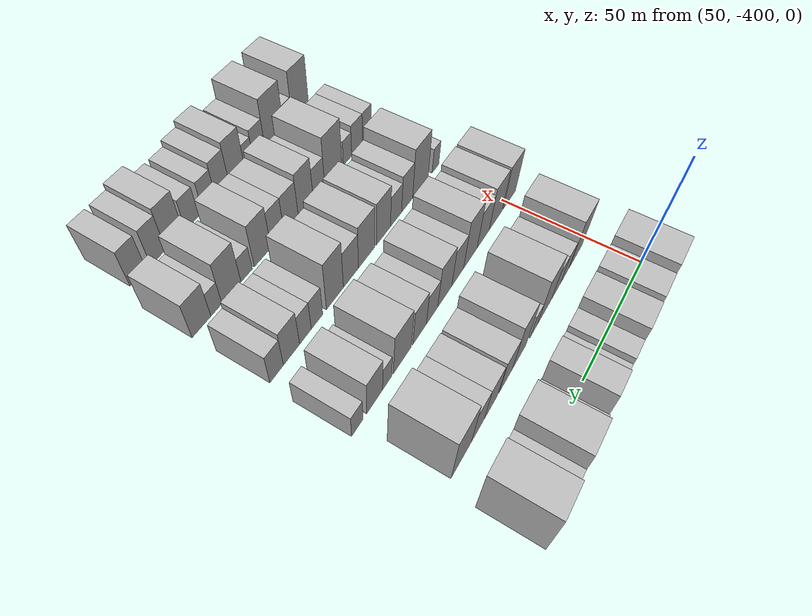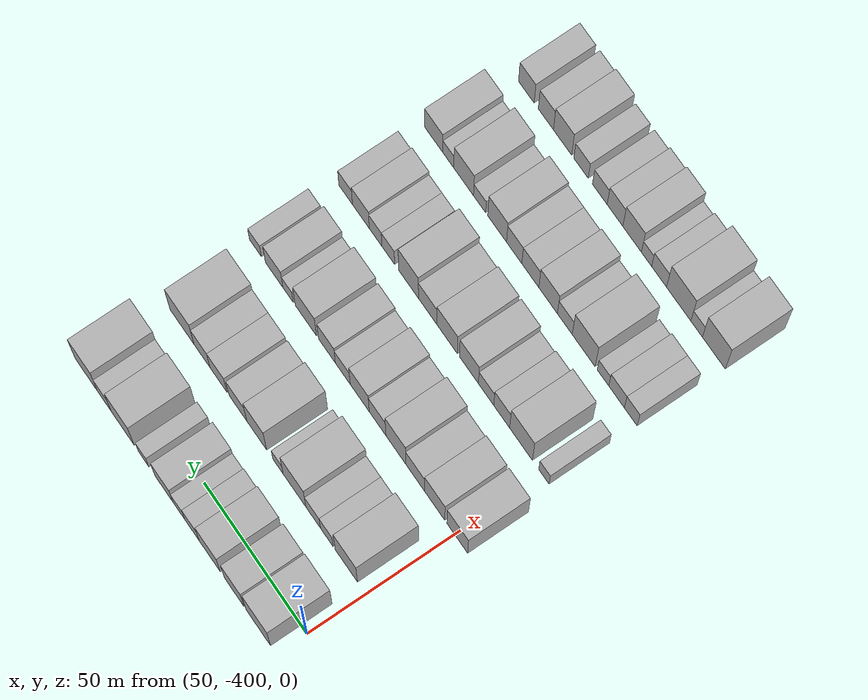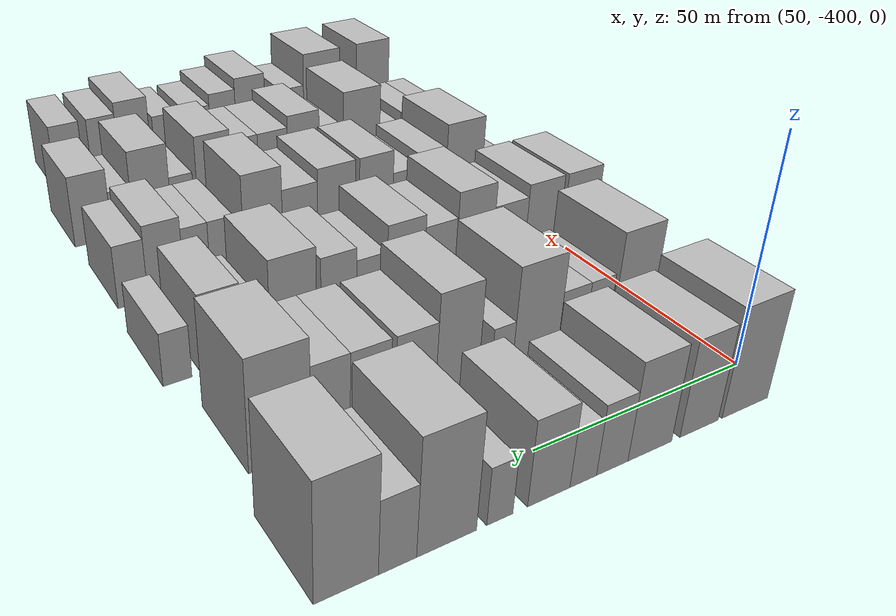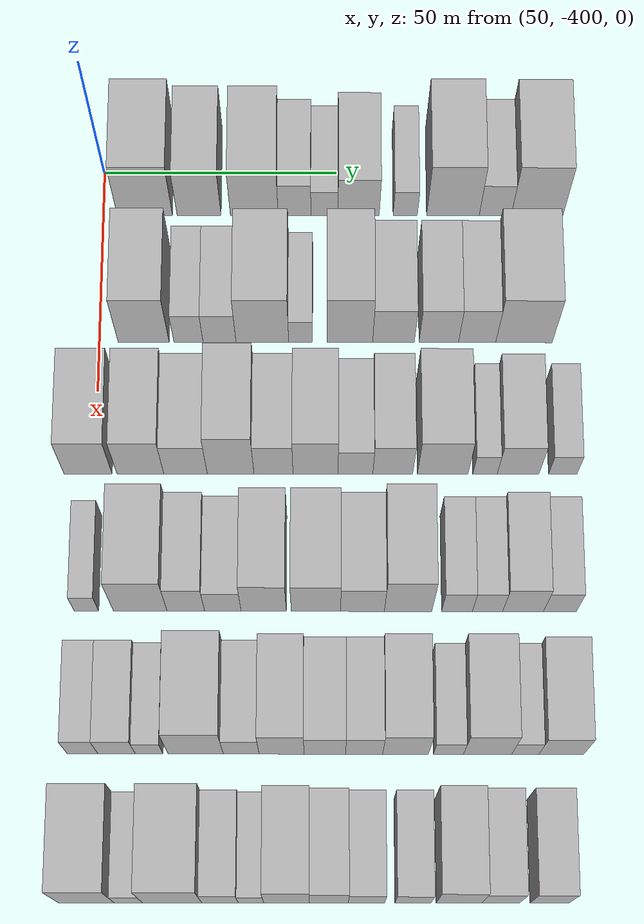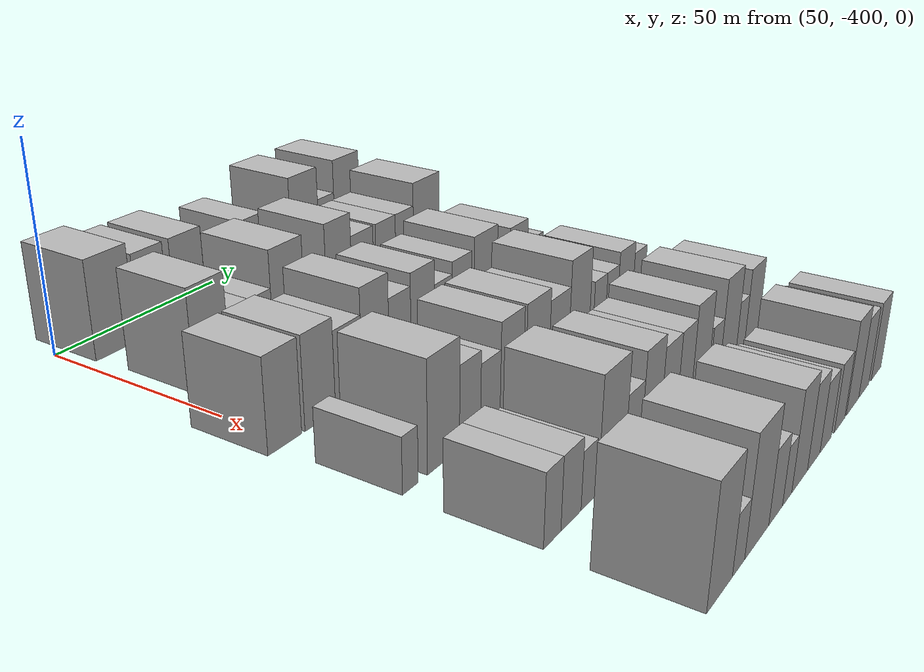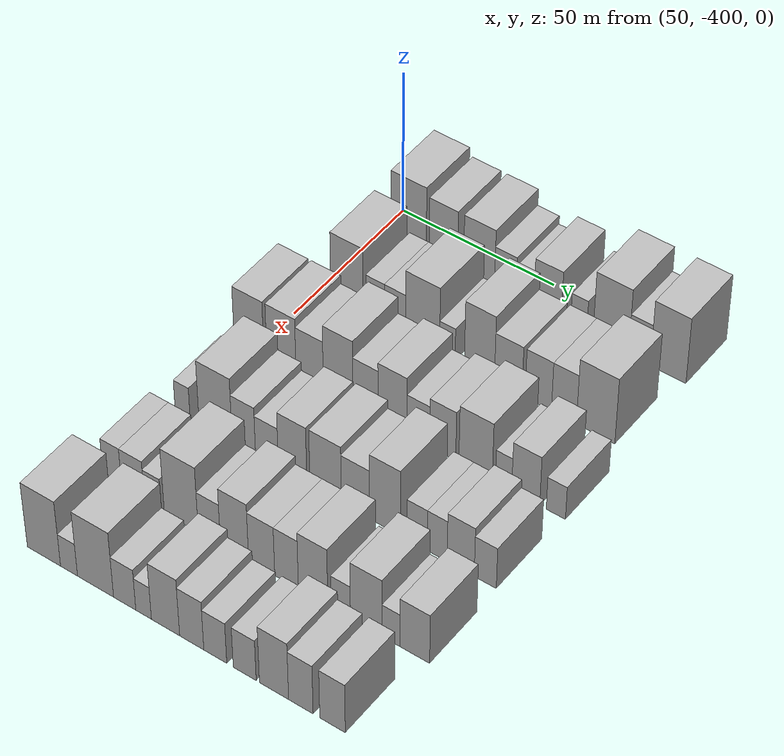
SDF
<sdf version="1.6">
 <world name="default">
  <model name="building_14">
   <static>1</static>
   <pose>50.0000 -391.1169 0 0.000000 0.000000 0.000000</pose>
   <link name="link">
    <pose>0 0 12.00 0 0 0</pose>
    <collision name="collision"><geometry><box><size>20.0000 11.8624 24.0000</size></box></geometry></collision>
    <visual name="visual">
     <cast_shadows>0</cast_shadows>
     <geometry><box><size>20.0000 11.8624 24.0000</size></box></geometry>
     <material>
      <script>
       <uri>model://HANNAS_wall/materials/scripts</uri>
       <uri>model://HANNAS_wall/materials/textures</uri>
       <name>vrc/HANNAS_wall</name>
      </script>
     </material>
    </visual>
   </link>
  </model>
  <model name="building_15">
   <static>1</static>
   <pose>50.0000 -379.4605 0 0.000000 0.000000 0.000000</pose>
   <link name="link">
    <pose>0 0 10.50 0 0 0</pose>
    <collision name="collision"><geometry><box><size>20.0000 9.4505 21.0000</size></box></geometry></collision>
    <visual name="visual">
     <cast_shadows>0</cast_shadows>
     <geometry><box><size>20.0000 9.4505 21.0000</size></box></geometry>
     <material>
      <script>
       <uri>model://HANNAS_wall/materials/scripts</uri>
       <uri>model://HANNAS_wall/materials/textures</uri>
       <name>vrc/HANNAS_wall</name>
      </script>
     </material>
    </visual>
   </link>
  </model>
  <model name="building_16">
   <static>1</static>
   <pose>50.0000 -367.6167 0 0.000000 0.000000 0.000000</pose>
   <link name="link">
    <pose>0 0 10.50 0 0 0</pose>
    <collision name="collision"><geometry><box><size>20.0000 10.2370 21.0000</size></box></geometry></collision>
    <visual name="visual">
     <cast_shadows>0</cast_shadows>
     <geometry><box><size>20.0000 10.2370 21.0000</size></box></geometry>
     <material>
      <script>
       <uri>model://HANNAS_wall/materials/scripts</uri>
       <uri>model://HANNAS_wall/materials/textures</uri>
       <name>vrc/HANNAS_wall</name>
      </script>
     </material>
    </visual>
   </link>
  </model>
  <model name="building_17">
   <static>1</static>
   <pose>50.0000 -358.9702 0 0.000000 0.000000 0.000000</pose>
   <link name="link">
    <pose>0 0 7.50 0 0 0</pose>
    <collision name="collision"><geometry><box><size>20.0000 7.0561 15.0000</size></box></geometry></collision>
    <visual name="visual">
     <cast_shadows>0</cast_shadows>
     <geometry><box><size>20.0000 7.0561 15.0000</size></box></geometry>
     <material>
      <script>
       <uri>model://HANNAS_wall/materials/scripts</uri>
       <uri>model://HANNAS_wall/materials/textures</uri>
       <name>vrc/HANNAS_wall</name>
      </script>
     </material>
    </visual>
   </link>
  </model>
  <model name="building_18">
   <static>1</static>
   <pose>50.0000 -352.5513 0 0.000000 0.000000 0.000000</pose>
   <link name="link">
    <pose>0 0 6.00 0 0 0</pose>
    <collision name="collision"><geometry><box><size>20.0000 5.7816 12.0000</size></box></geometry></collision>
    <visual name="visual">
     <cast_shadows>0</cast_shadows>
     <geometry><box><size>20.0000 5.7816 12.0000</size></box></geometry>
     <material>
      <script>
       <uri>model://HANNAS_wall/materials/scripts</uri>
       <uri>model://HANNAS_wall/materials/textures</uri>
       <name>vrc/HANNAS_wall</name>
      </script>
     </material>
    </visual>
   </link>
  </model>
  <model name="building_19">
   <static>1</static>
   <pose>50.0000 -345.2167 0 0.000000 0.000000 0.000000</pose>
   <link name="link">
    <pose>0 0 9.00 0 0 0</pose>
    <collision name="collision"><geometry><box><size>20.0000 8.8877 18.0000</size></box></geometry></collision>
    <visual name="visual">
     <cast_shadows>0</cast_shadows>
     <geometry><box><size>20.0000 8.8877 18.0000</size></box></geometry>
     <material>
      <script>
       <uri>model://HANNAS_wall/materials/scripts</uri>
       <uri>model://HANNAS_wall/materials/textures</uri>
       <name>vrc/HANNAS_wall</name>
      </script>
     </material>
    </visual>
   </link>
  </model>
  <model name="building_20">
   <static>1</static>
   <pose>50.0000 -335.1742 0 0.000000 0.000000 0.000000</pose>
   <link name="link">
    <pose>0 0 6.00 0 0 0</pose>
    <collision name="collision"><geometry><box><size>20.0000 5.1972 12.0000</size></box></geometry></collision>
    <visual name="visual">
     <cast_shadows>0</cast_shadows>
     <geometry><box><size>20.0000 5.1972 12.0000</size></box></geometry>
     <material>
      <script>
       <uri>model://HANNAS_wall/materials/scripts</uri>
       <uri>model://HANNAS_wall/materials/textures</uri>
       <name>vrc/HANNAS_wall</name>
      </script>
     </material>
    </visual>
   </link>
  </model>
  <model name="building_21">
   <static>1</static>
   <pose>50.0000 -324.9259 0 0.000000 0.000000 0.000000</pose>
   <link name="link">
    <pose>0 0 12.00 0 0 0</pose>
    <collision name="collision"><geometry><box><size>20.0000 11.2994 24.0000</size></box></geometry></collision>
    <visual name="visual">
     <cast_shadows>0</cast_shadows>
     <geometry><box><size>20.0000 11.2994 24.0000</size></box></geometry>
     <material>
      <script>
       <uri>model://HANNAS_wall/materials/scripts</uri>
       <uri>model://HANNAS_wall/materials/textures</uri>
       <name>vrc/HANNAS_wall</name>
      </script>
     </material>
    </visual>
   </link>
  </model>
  <model name="building_22">
   <static>1</static>
   <pose>50.0000 -315.8454 0 0.000000 0.000000 0.000000</pose>
   <link name="link">
    <pose>0 0 7.50 0 0 0</pose>
    <collision name="collision"><geometry><box><size>20.0000 6.8616 15.0000</size></box></geometry></collision>
    <visual name="visual">
     <cast_shadows>0</cast_shadows>
     <geometry><box><size>20.0000 6.8616 15.0000</size></box></geometry>
     <material>
      <script>
       <uri>model://HANNAS_wall/materials/scripts</uri>
       <uri>model://HANNAS_wall/materials/textures</uri>
       <name>vrc/HANNAS_wall</name>
      </script>
     </material>
    </visual>
   </link>
  </model>
  <model name="building_23">
   <static>1</static>
   <pose>50.0000 -306.8492 0 0.000000 0.000000 0.000000</pose>
   <link name="link">
    <pose>0 0 12.00 0 0 0</pose>
    <collision name="collision"><geometry><box><size>20.0000 11.1307 24.0000</size></box></geometry></collision>
    <visual name="visual">
     <cast_shadows>0</cast_shadows>
     <geometry><box><size>20.0000 11.1307 24.0000</size></box></geometry>
     <material>
      <script>
       <uri>model://HANNAS_wall/materials/scripts</uri>
       <uri>model://HANNAS_wall/materials/textures</uri>
       <name>vrc/HANNAS_wall</name>
      </script>
     </material>
    </visual>
   </link>
  </model>
  <model name="building_129">
   <static>1</static>
   <pose>79.0000 -390.6165 0 0.000000 0.000000 0.000000</pose>
   <link name="link">
    <pose>0 0 12.00 0 0 0</pose>
    <collision name="collision"><geometry><box><size>20.0000 10.7417 24.0000</size></box></geometry></collision>
    <visual name="visual">
     <cast_shadows>0</cast_shadows>
     <geometry><box><size>20.0000 10.7417 24.0000</size></box></geometry>
     <material>
      <script>
       <uri>model://HANNAS_wall/materials/scripts</uri>
       <uri>model://HANNAS_wall/materials/textures</uri>
       <name>vrc/HANNAS_wall</name>
      </script>
     </material>
    </visual>
   </link>
  </model>
  <model name="building_130">
   <static>1</static>
   <pose>79.0000 -381.1751 0 0.000000 0.000000 0.000000</pose>
   <link name="link">
    <pose>0 0 7.50 0 0 0</pose>
    <collision name="collision"><geometry><box><size>20.0000 6.1411 15.0000</size></box></geometry></collision>
    <visual name="visual">
     <cast_shadows>0</cast_shadows>
     <geometry><box><size>20.0000 6.1411 15.0000</size></box></geometry>
     <material>
      <script>
       <uri>model://HANNAS_wall/materials/scripts</uri>
       <uri>model://HANNAS_wall/materials/textures</uri>
       <name>vrc/HANNAS_wall</name>
      </script>
     </material>
    </visual>
   </link>
  </model>
  <model name="building_131">
   <static>1</static>
   <pose>79.0000 -374.6351 0 0.000000 0.000000 0.000000</pose>
   <link name="link">
    <pose>0 0 7.50 0 0 0</pose>
    <collision name="collision"><geometry><box><size>20.0000 6.9390 15.0000</size></box></geometry></collision>
    <visual name="visual">
     <cast_shadows>0</cast_shadows>
     <geometry><box><size>20.0000 6.9390 15.0000</size></box></geometry>
     <material>
      <script>
       <uri>model://HANNAS_wall/materials/scripts</uri>
       <uri>model://HANNAS_wall/materials/textures</uri>
       <name>vrc/HANNAS_wall</name>
      </script>
     </material>
    </visual>
   </link>
  </model>
  <model name="building_132">
   <static>1</static>
   <pose>79.0000 -365.6140 0 0.000000 0.000000 0.000000</pose>
   <link name="link">
    <pose>0 0 12.00 0 0 0</pose>
    <collision name="collision"><geometry><box><size>20.0000 11.1031 24.0000</size></box></geometry></collision>
    <visual name="visual">
     <cast_shadows>0</cast_shadows>
     <geometry><box><size>20.0000 11.1031 24.0000</size></box></geometry>
     <material>
      <script>
       <uri>model://HANNAS_wall/materials/scripts</uri>
       <uri>model://HANNAS_wall/materials/textures</uri>
       <name>vrc/HANNAS_wall</name>
      </script>
     </material>
    </visual>
   </link>
  </model>
  <model name="building_133">
   <static>1</static>
   <pose>79.0000 -357.5461 0 0.000000 0.000000 0.000000</pose>
   <link name="link">
    <pose>0 0 6.00 0 0 0</pose>
    <collision name="collision"><geometry><box><size>20.0000 5.0327 12.0000</size></box></geometry></collision>
    <visual name="visual">
     <cast_shadows>0</cast_shadows>
     <geometry><box><size>20.0000 5.0327 12.0000</size></box></geometry>
     <material>
      <script>
       <uri>model://HANNAS_wall/materials/scripts</uri>
       <uri>model://HANNAS_wall/materials/textures</uri>
       <name>vrc/HANNAS_wall</name>
      </script>
     </material>
    </visual>
   </link>
  </model>
  <model name="building_134">
   <static>1</static>
   <pose>79.0000 -347.1965 0 0.000000 0.000000 0.000000</pose>
   <link name="link">
    <pose>0 0 12.00 0 0 0</pose>
    <collision name="collision"><geometry><box><size>20.0000 9.6665 24.0000</size></box></geometry></collision>
    <visual name="visual">
     <cast_shadows>0</cast_shadows>
     <geometry><box><size>20.0000 9.6665 24.0000</size></box></geometry>
     <material>
      <script>
       <uri>model://HANNAS_wall/materials/scripts</uri>
       <uri>model://HANNAS_wall/materials/textures</uri>
       <name>vrc/HANNAS_wall</name>
      </script>
     </material>
    </visual>
   </link>
  </model>
  <model name="building_135">
   <static>1</static>
   <pose>79.0000 -337.9759 0 0.000000 0.000000 0.000000</pose>
   <link name="link">
    <pose>0 0 9.00 0 0 0</pose>
    <collision name="collision"><geometry><box><size>20.0000 8.7748 18.0000</size></box></geometry></collision>
    <visual name="visual">
     <cast_shadows>0</cast_shadows>
     <geometry><box><size>20.0000 8.7748 18.0000</size></box></geometry>
     <material>
      <script>
       <uri>model://HANNAS_wall/materials/scripts</uri>
       <uri>model://HANNAS_wall/materials/textures</uri>
       <name>vrc/HANNAS_wall</name>
      </script>
     </material>
    </visual>
   </link>
  </model>
  <model name="building_136">
   <static>1</static>
   <pose>79.0000 -328.4315 0 0.000000 0.000000 0.000000</pose>
   <link name="link">
    <pose>0 0 9.00 0 0 0</pose>
    <collision name="collision"><geometry><box><size>20.0000 8.3140 18.0000</size></box></geometry></collision>
    <visual name="visual">
     <cast_shadows>0</cast_shadows>
     <geometry><box><size>20.0000 8.3140 18.0000</size></box></geometry>
     <material>
      <script>
       <uri>model://HANNAS_wall/materials/scripts</uri>
       <uri>model://HANNAS_wall/materials/textures</uri>
       <name>vrc/HANNAS_wall</name>
      </script>
     </material>
    </visual>
   </link>
  </model>
  <model name="building_137">
   <static>1</static>
   <pose>79.0000 -320.3533 0 0.000000 0.000000 0.000000</pose>
   <link name="link">
    <pose>0 0 9.00 0 0 0</pose>
    <collision name="collision"><geometry><box><size>20.0000 7.8424 18.0000</size></box></geometry></collision>
    <visual name="visual">
     <cast_shadows>0</cast_shadows>
     <geometry><box><size>20.0000 7.8424 18.0000</size></box></geometry>
     <material>
      <script>
       <uri>model://HANNAS_wall/materials/scripts</uri>
       <uri>model://HANNAS_wall/materials/textures</uri>
       <name>vrc/HANNAS_wall</name>
      </script>
     </material>
    </visual>
   </link>
  </model>
  <model name="building_138">
   <static>1</static>
   <pose>79.0000 -310.4746 0 0.000000 0.000000 0.000000</pose>
   <link name="link">
    <pose>0 0 12.00 0 0 0</pose>
    <collision name="collision"><geometry><box><size>20.0000 11.9148 24.0000</size></box></geometry></collision>
    <visual name="visual">
     <cast_shadows>0</cast_shadows>
     <geometry><box><size>20.0000 11.9148 24.0000</size></box></geometry>
     <material>
      <script>
       <uri>model://HANNAS_wall/materials/scripts</uri>
       <uri>model://HANNAS_wall/materials/textures</uri>
       <name>vrc/HANNAS_wall</name>
      </script>
     </material>
    </visual>
   </link>
  </model>
  <model name="building_243">
   <static>1</static>
   <pose>108.0000 -401.3558 0 0.000000 0.000000 0.000000</pose>
   <link name="link">
    <pose>0 0 10.50 0 0 0</pose>
    <collision name="collision"><geometry><box><size>20.0000 9.9428 21.0000</size></box></geometry></collision>
    <visual name="visual">
     <cast_shadows>0</cast_shadows>
     <geometry><box><size>20.0000 9.9428 21.0000</size></box></geometry>
     <material>
      <script>
       <uri>model://HANNAS_wall/materials/scripts</uri>
       <uri>model://HANNAS_wall/materials/textures</uri>
       <name>vrc/HANNAS_wall</name>
      </script>
     </material>
    </visual>
   </link>
  </model>
  <model name="building_244">
   <static>1</static>
   <pose>108.0000 -390.5470 0 0.000000 0.000000 0.000000</pose>
   <link name="link">
    <pose>0 0 10.50 0 0 0</pose>
    <collision name="collision"><geometry><box><size>20.0000 9.6748 21.0000</size></box></geometry></collision>
    <visual name="visual">
     <cast_shadows>0</cast_shadows>
     <geometry><box><size>20.0000 9.6748 21.0000</size></box></geometry>
     <material>
      <script>
       <uri>model://HANNAS_wall/materials/scripts</uri>
       <uri>model://HANNAS_wall/materials/textures</uri>
       <name>vrc/HANNAS_wall</name>
      </script>
     </material>
    </visual>
   </link>
  </model>
  <model name="building_245">
   <static>1</static>
   <pose>108.0000 -381.2159 0 0.000000 0.000000 0.000000</pose>
   <link name="link">
    <pose>0 0 9.00 0 0 0</pose>
    <collision name="collision"><geometry><box><size>20.0000 8.9873 18.0000</size></box></geometry></collision>
    <visual name="visual">
     <cast_shadows>0</cast_shadows>
     <geometry><box><size>20.0000 8.9873 18.0000</size></box></geometry>
     <material>
      <script>
       <uri>model://HANNAS_wall/materials/scripts</uri>
       <uri>model://HANNAS_wall/materials/textures</uri>
       <name>vrc/HANNAS_wall</name>
      </script>
     </material>
    </visual>
   </link>
  </model>
  <model name="building_246">
   <static>1</static>
   <pose>108.0000 -371.8917 0 0.000000 0.000000 0.000000</pose>
   <link name="link">
    <pose>0 0 12.00 0 0 0</pose>
    <collision name="collision"><geometry><box><size>20.0000 9.6612 24.0000</size></box></geometry></collision>
    <visual name="visual">
     <cast_shadows>0</cast_shadows>
     <geometry><box><size>20.0000 9.6612 24.0000</size></box></geometry>
     <material>
      <script>
       <uri>model://HANNAS_wall/materials/scripts</uri>
       <uri>model://HANNAS_wall/materials/textures</uri>
       <name>vrc/HANNAS_wall</name>
      </script>
     </material>
    </visual>
   </link>
  </model>
  <model name="building_247">
   <static>1</static>
   <pose>108.0000 -363.0323 0 0.000000 0.000000 0.000000</pose>
   <link name="link">
    <pose>0 0 9.00 0 0 0</pose>
    <collision name="collision"><geometry><box><size>20.0000 8.0576 18.0000</size></box></geometry></collision>
    <visual name="visual">
     <cast_shadows>0</cast_shadows>
     <geometry><box><size>20.0000 8.0576 18.0000</size></box></geometry>
     <material>
      <script>
       <uri>model://HANNAS_wall/materials/scripts</uri>
       <uri>model://HANNAS_wall/materials/textures</uri>
       <name>vrc/HANNAS_wall</name>
      </script>
     </material>
    </visual>
   </link>
  </model>
  <model name="building_248">
   <static>1</static>
   <pose>108.0000 -354.3794 0 0.000000 0.000000 0.000000</pose>
   <link name="link">
    <pose>0 0 10.50 0 0 0</pose>
    <collision name="collision"><geometry><box><size>20.0000 9.2481 21.0000</size></box></geometry></collision>
    <visual name="visual">
     <cast_shadows>0</cast_shadows>
     <geometry><box><size>20.0000 9.2481 21.0000</size></box></geometry>
     <material>
      <script>
       <uri>model://HANNAS_wall/materials/scripts</uri>
       <uri>model://HANNAS_wall/materials/textures</uri>
       <name>vrc/HANNAS_wall</name>
      </script>
     </material>
    </visual>
   </link>
  </model>
  <model name="building_249">
   <static>1</static>
   <pose>108.0000 -346.1368 0 0.000000 0.000000 0.000000</pose>
   <link name="link">
    <pose>0 0 7.50 0 0 0</pose>
    <collision name="collision"><geometry><box><size>20.0000 7.2371 15.0000</size></box></geometry></collision>
    <visual name="visual">
     <cast_shadows>0</cast_shadows>
     <geometry><box><size>20.0000 7.2371 15.0000</size></box></geometry>
     <material>
      <script>
       <uri>model://HANNAS_wall/materials/scripts</uri>
       <uri>model://HANNAS_wall/materials/textures</uri>
       <name>vrc/HANNAS_wall</name>
      </script>
     </material>
    </visual>
   </link>
  </model>
  <model name="building_250">
   <static>1</static>
   <pose>108.0000 -338.4086 0 0.000000 0.000000 0.000000</pose>
   <link name="link">
    <pose>0 0 9.00 0 0 0</pose>
    <collision name="collision"><geometry><box><size>20.0000 8.2192 18.0000</size></box></geometry></collision>
    <visual name="visual">
     <cast_shadows>0</cast_shadows>
     <geometry><box><size>20.0000 8.2192 18.0000</size></box></geometry>
     <material>
      <script>
       <uri>model://HANNAS_wall/materials/scripts</uri>
       <uri>model://HANNAS_wall/materials/textures</uri>
       <name>vrc/HANNAS_wall</name>
      </script>
     </material>
    </visual>
   </link>
  </model>
  <model name="building_251">
   <static>1</static>
   <pose>108.0000 -328.0817 0 0.000000 0.000000 0.000000</pose>
   <link name="link">
    <pose>0 0 10.50 0 0 0</pose>
    <collision name="collision"><geometry><box><size>20.0000 10.4348 21.0000</size></box></geometry></collision>
    <visual name="visual">
     <cast_shadows>0</cast_shadows>
     <geometry><box><size>20.0000 10.4348 21.0000</size></box></geometry>
     <material>
      <script>
       <uri>model://HANNAS_wall/materials/scripts</uri>
       <uri>model://HANNAS_wall/materials/textures</uri>
       <name>vrc/HANNAS_wall</name>
      </script>
     </material>
    </visual>
   </link>
  </model>
  <model name="building_252">
   <static>1</static>
   <pose>108.0000 -319.3493 0 0.000000 0.000000 0.000000</pose>
   <link name="link">
    <pose>0 0 6.00 0 0 0</pose>
    <collision name="collision"><geometry><box><size>20.0000 5.0300 12.0000</size></box></geometry></collision>
    <visual name="visual">
     <cast_shadows>0</cast_shadows>
     <geometry><box><size>20.0000 5.0300 12.0000</size></box></geometry>
     <material>
      <script>
       <uri>model://HANNAS_wall/materials/scripts</uri>
       <uri>model://HANNAS_wall/materials/textures</uri>
       <name>vrc/HANNAS_wall</name>
      </script>
     </material>
    </visual>
   </link>
  </model>
  <model name="building_253">
   <static>1</static>
   <pose>108.0000 -312.5192 0 0.000000 0.000000 0.000000</pose>
   <link name="link">
    <pose>0 0 9.00 0 0 0</pose>
    <collision name="collision"><geometry><box><size>20.0000 8.6300 18.0000</size></box></geometry></collision>
    <visual name="visual">
     <cast_shadows>0</cast_shadows>
     <geometry><box><size>20.0000 8.6300 18.0000</size></box></geometry>
     <material>
      <script>
       <uri>model://HANNAS_wall/materials/scripts</uri>
       <uri>model://HANNAS_wall/materials/textures</uri>
       <name>vrc/HANNAS_wall</name>
      </script>
     </material>
    </visual>
   </link>
  </model>
  <model name="building_254">
   <static>1</static>
   <pose>108.0000 -303.2706 0 0.000000 0.000000 0.000000</pose>
   <link name="link">
    <pose>0 0 6.00 0 0 0</pose>
    <collision name="collision"><geometry><box><size>20.0000 5.8672 12.0000</size></box></geometry></collision>
    <visual name="visual">
     <cast_shadows>0</cast_shadows>
     <geometry><box><size>20.0000 5.8672 12.0000</size></box></geometry>
     <material>
      <script>
       <uri>model://HANNAS_wall/materials/scripts</uri>
       <uri>model://HANNAS_wall/materials/textures</uri>
       <name>vrc/HANNAS_wall</name>
      </script>
     </material>
    </visual>
   </link>
  </model>
  <model name="building_355">
   <static>1</static>
   <pose>137.0000 -400.7031 0 0.000000 0.000000 0.000000</pose>
   <link name="link">
    <pose>0 0 6.00 0 0 0</pose>
    <collision name="collision"><geometry><box><size>20.0000 4.9476 12.0000</size></box></geometry></collision>
    <visual name="visual">
     <cast_shadows>0</cast_shadows>
     <geometry><box><size>20.0000 4.9476 12.0000</size></box></geometry>
     <material>
      <script>
       <uri>model://HANNAS_wall/materials/scripts</uri>
       <uri>model://HANNAS_wall/materials/textures</uri>
       <name>vrc/HANNAS_wall</name>
      </script>
     </material>
    </visual>
   </link>
  </model>
  <model name="building_356">
   <static>1</static>
   <pose>137.0000 -389.7900 0 0.000000 0.000000 0.000000</pose>
   <link name="link">
    <pose>0 0 12.00 0 0 0</pose>
    <collision name="collision"><geometry><box><size>20.0000 10.8788 24.0000</size></box></geometry></collision>
    <visual name="visual">
     <cast_shadows>0</cast_shadows>
     <geometry><box><size>20.0000 10.8788 24.0000</size></box></geometry>
     <material>
      <script>
       <uri>model://HANNAS_wall/materials/scripts</uri>
       <uri>model://HANNAS_wall/materials/textures</uri>
       <name>vrc/HANNAS_wall</name>
      </script>
     </material>
    </visual>
   </link>
  </model>
  <model name="building_357">
   <static>1</static>
   <pose>137.0000 -380.5550 0 0.000000 0.000000 0.000000</pose>
   <link name="link">
    <pose>0 0 9.00 0 0 0</pose>
    <collision name="collision"><geometry><box><size>20.0000 7.5913 18.0000</size></box></geometry></collision>
    <visual name="visual">
     <cast_shadows>0</cast_shadows>
     <geometry><box><size>20.0000 7.5913 18.0000</size></box></geometry>
     <material>
      <script>
       <uri>model://HANNAS_wall/materials/scripts</uri>
       <uri>model://HANNAS_wall/materials/textures</uri>
       <name>vrc/HANNAS_wall</name>
      </script>
     </material>
    </visual>
   </link>
  </model>
  <model name="building_358">
   <static>1</static>
   <pose>137.0000 -373.0667 0 0.000000 0.000000 0.000000</pose>
   <link name="link">
    <pose>0 0 7.50 0 0 0</pose>
    <collision name="collision"><geometry><box><size>20.0000 7.3852 15.0000</size></box></geometry></collision>
    <visual name="visual">
     <cast_shadows>0</cast_shadows>
     <geometry><box><size>20.0000 7.3852 15.0000</size></box></geometry>
     <material>
      <script>
       <uri>model://HANNAS_wall/materials/scripts</uri>
       <uri>model://HANNAS_wall/materials/textures</uri>
       <name>vrc/HANNAS_wall</name>
      </script>
     </material>
    </visual>
   </link>
  </model>
  <model name="building_359">
   <static>1</static>
   <pose>137.0000 -364.8025 0 0.000000 0.000000 0.000000</pose>
   <link name="link">
    <pose>0 0 10.50 0 0 0</pose>
    <collision name="collision"><geometry><box><size>20.0000 9.1433 21.0000</size></box></geometry></collision>
    <visual name="visual">
     <cast_shadows>0</cast_shadows>
     <geometry><box><size>20.0000 9.1433 21.0000</size></box></geometry>
     <material>
      <script>
       <uri>model://HANNAS_wall/materials/scripts</uri>
       <uri>model://HANNAS_wall/materials/textures</uri>
       <name>vrc/HANNAS_wall</name>
      </script>
     </material>
    </visual>
   </link>
  </model>
  <model name="building_360">
   <static>1</static>
   <pose>137.0000 -354.2568 0 0.000000 0.000000 0.000000</pose>
   <link name="link">
    <pose>0 0 10.50 0 0 0</pose>
    <collision name="collision"><geometry><box><size>20.0000 9.9481 21.0000</size></box></geometry></collision>
    <visual name="visual">
     <cast_shadows>0</cast_shadows>
     <geometry><box><size>20.0000 9.9481 21.0000</size></box></geometry>
     <material>
      <script>
       <uri>model://HANNAS_wall/materials/scripts</uri>
       <uri>model://HANNAS_wall/materials/textures</uri>
       <name>vrc/HANNAS_wall</name>
      </script>
     </material>
    </visual>
   </link>
  </model>
  <model name="building_361">
   <static>1</static>
   <pose>137.0000 -344.8387 0 0.000000 0.000000 0.000000</pose>
   <link name="link">
    <pose>0 0 9.00 0 0 0</pose>
    <collision name="collision"><geometry><box><size>20.0000 8.8883 18.0000</size></box></geometry></collision>
    <visual name="visual">
     <cast_shadows>0</cast_shadows>
     <geometry><box><size>20.0000 8.8883 18.0000</size></box></geometry>
     <material>
      <script>
       <uri>model://HANNAS_wall/materials/scripts</uri>
       <uri>model://HANNAS_wall/materials/textures</uri>
       <name>vrc/HANNAS_wall</name>
      </script>
     </material>
    </visual>
   </link>
  </model>
  <model name="building_362">
   <static>1</static>
   <pose>137.0000 -335.5828 0 0.000000 0.000000 0.000000</pose>
   <link name="link">
    <pose>0 0 12.00 0 0 0</pose>
    <collision name="collision"><geometry><box><size>20.0000 9.6235 24.0000</size></box></geometry></collision>
    <visual name="visual">
     <cast_shadows>0</cast_shadows>
     <geometry><box><size>20.0000 9.6235 24.0000</size></box></geometry>
     <material>
      <script>
       <uri>model://HANNAS_wall/materials/scripts</uri>
       <uri>model://HANNAS_wall/materials/textures</uri>
       <name>vrc/HANNAS_wall</name>
      </script>
     </material>
    </visual>
   </link>
  </model>
  <model name="building_363">
   <static>1</static>
   <pose>137.0000 -325.6632 0 0.000000 0.000000 0.000000</pose>
   <link name="link">
    <pose>0 0 7.50 0 0 0</pose>
    <collision name="collision"><geometry><box><size>20.0000 6.2159 15.0000</size></box></geometry></collision>
    <visual name="visual">
     <cast_shadows>0</cast_shadows>
     <geometry><box><size>20.0000 6.2159 15.0000</size></box></geometry>
     <material>
      <script>
       <uri>model://HANNAS_wall/materials/scripts</uri>
       <uri>model://HANNAS_wall/materials/textures</uri>
       <name>vrc/HANNAS_wall</name>
      </script>
     </material>
    </visual>
   </link>
  </model>
  <model name="building_364">
   <static>1</static>
   <pose>137.0000 -319.4896 0 0.000000 0.000000 0.000000</pose>
   <link name="link">
    <pose>0 0 7.50 0 0 0</pose>
    <collision name="collision"><geometry><box><size>20.0000 6.1313 15.0000</size></box></geometry></collision>
    <visual name="visual">
     <cast_shadows>0</cast_shadows>
     <geometry><box><size>20.0000 6.1313 15.0000</size></box></geometry>
     <material>
      <script>
       <uri>model://HANNAS_wall/materials/scripts</uri>
       <uri>model://HANNAS_wall/materials/textures</uri>
       <name>vrc/HANNAS_wall</name>
      </script>
     </material>
    </visual>
   </link>
  </model>
  <model name="building_365">
   <static>1</static>
   <pose>137.0000 -312.2790 0 0.000000 0.000000 0.000000</pose>
   <link name="link">
    <pose>0 0 9.00 0 0 0</pose>
    <collision name="collision"><geometry><box><size>20.0000 8.2899 18.0000</size></box></geometry></collision>
    <visual name="visual">
     <cast_shadows>0</cast_shadows>
     <geometry><box><size>20.0000 8.2899 18.0000</size></box></geometry>
     <material>
      <script>
       <uri>model://HANNAS_wall/materials/scripts</uri>
       <uri>model://HANNAS_wall/materials/textures</uri>
       <name>vrc/HANNAS_wall</name>
      </script>
     </material>
    </visual>
   </link>
  </model>
  <model name="building_366">
   <static>1</static>
   <pose>137.0000 -304.7952 0 0.000000 0.000000 0.000000</pose>
   <link name="link">
    <pose>0 0 7.50 0 0 0</pose>
    <collision name="collision"><geometry><box><size>20.0000 6.6778 15.0000</size></box></geometry></collision>
    <visual name="visual">
     <cast_shadows>0</cast_shadows>
     <geometry><box><size>20.0000 6.6778 15.0000</size></box></geometry>
     <material>
      <script>
       <uri>model://HANNAS_wall/materials/scripts</uri>
       <uri>model://HANNAS_wall/materials/textures</uri>
       <name>vrc/HANNAS_wall</name>
      </script>
     </material>
    </visual>
   </link>
  </model>
  <model name="building_476">
   <static>1</static>
   <pose>166.0000 -400.4587 0 0.000000 0.000000 0.000000</pose>
   <link name="link">
    <pose>0 0 7.50 0 0 0</pose>
    <collision name="collision"><geometry><box><size>20.0000 6.0867 15.0000</size></box></geometry></collision>
    <visual name="visual">
     <cast_shadows>0</cast_shadows>
     <geometry><box><size>20.0000 6.0867 15.0000</size></box></geometry>
     <material>
      <script>
       <uri>model://HANNAS_wall/materials/scripts</uri>
       <uri>model://HANNAS_wall/materials/textures</uri>
       <name>vrc/HANNAS_wall</name>
      </script>
     </material>
    </visual>
   </link>
  </model>
  <model name="building_477">
   <static>1</static>
   <pose>166.0000 -393.7168 0 0.000000 0.000000 0.000000</pose>
   <link name="link">
    <pose>0 0 7.50 0 0 0</pose>
    <collision name="collision"><geometry><box><size>20.0000 7.3971 15.0000</size></box></geometry></collision>
    <visual name="visual">
     <cast_shadows>0</cast_shadows>
     <geometry><box><size>20.0000 7.3971 15.0000</size></box></geometry>
     <material>
      <script>
       <uri>model://HANNAS_wall/materials/scripts</uri>
       <uri>model://HANNAS_wall/materials/textures</uri>
       <name>vrc/HANNAS_wall</name>
      </script>
     </material>
    </visual>
   </link>
  </model>
  <model name="building_478">
   <static>1</static>
   <pose>166.0000 -387.2690 0 0.000000 0.000000 0.000000</pose>
   <link name="link">
    <pose>0 0 6.00 0 0 0</pose>
    <collision name="collision"><geometry><box><size>20.0000 5.4985 12.0000</size></box></geometry></collision>
    <visual name="visual">
     <cast_shadows>0</cast_shadows>
     <geometry><box><size>20.0000 5.4985 12.0000</size></box></geometry>
     <material>
      <script>
       <uri>model://HANNAS_wall/materials/scripts</uri>
       <uri>model://HANNAS_wall/materials/textures</uri>
       <name>vrc/HANNAS_wall</name>
      </script>
     </material>
    </visual>
   </link>
  </model>
  <model name="building_479">
   <static>1</static>
   <pose>166.0000 -378.0439 0 0.000000 0.000000 0.000000</pose>
   <link name="link">
    <pose>0 0 12.00 0 0 0</pose>
    <collision name="collision"><geometry><box><size>20.0000 10.9516 24.0000</size></box></geometry></collision>
    <visual name="visual">
     <cast_shadows>0</cast_shadows>
     <geometry><box><size>20.0000 10.9516 24.0000</size></box></geometry>
     <material>
      <script>
       <uri>model://HANNAS_wall/materials/scripts</uri>
       <uri>model://HANNAS_wall/materials/textures</uri>
       <name>vrc/HANNAS_wall</name>
      </script>
     </material>
    </visual>
   </link>
  </model>
  <model name="building_480">
   <static>1</static>
   <pose>166.0000 -369.0242 0 0.000000 0.000000 0.000000</pose>
   <link name="link">
    <pose>0 0 7.50 0 0 0</pose>
    <collision name="collision"><geometry><box><size>20.0000 7.0880 15.0000</size></box></geometry></collision>
    <visual name="visual">
     <cast_shadows>0</cast_shadows>
     <geometry><box><size>20.0000 7.0880 15.0000</size></box></geometry>
     <material>
      <script>
       <uri>model://HANNAS_wall/materials/scripts</uri>
       <uri>model://HANNAS_wall/materials/textures</uri>
       <name>vrc/HANNAS_wall</name>
      </script>
     </material>
    </visual>
   </link>
  </model>
  <model name="building_481">
   <static>1</static>
   <pose>166.0000 -361.0165 0 0.000000 0.000000 0.000000</pose>
   <link name="link">
    <pose>0 0 10.50 0 0 0</pose>
    <collision name="collision"><geometry><box><size>20.0000 8.9274 21.0000</size></box></geometry></collision>
    <visual name="visual">
     <cast_shadows>0</cast_shadows>
     <geometry><box><size>20.0000 8.9274 21.0000</size></box></geometry>
     <material>
      <script>
       <uri>model://HANNAS_wall/materials/scripts</uri>
       <uri>model://HANNAS_wall/materials/textures</uri>
       <name>vrc/HANNAS_wall</name>
      </script>
     </material>
    </visual>
   </link>
  </model>
  <model name="building_482">
   <static>1</static>
   <pose>166.0000 -352.4479 0 0.000000 0.000000 0.000000</pose>
   <link name="link">
    <pose>0 0 9.00 0 0 0</pose>
    <collision name="collision"><geometry><box><size>20.0000 8.2097 18.0000</size></box></geometry></collision>
    <visual name="visual">
     <cast_shadows>0</cast_shadows>
     <geometry><box><size>20.0000 8.2097 18.0000</size></box></geometry>
     <material>
      <script>
       <uri>model://HANNAS_wall/materials/scripts</uri>
       <uri>model://HANNAS_wall/materials/textures</uri>
       <name>vrc/HANNAS_wall</name>
      </script>
     </material>
    </visual>
   </link>
  </model>
  <model name="building_483">
   <static>1</static>
   <pose>166.0000 -344.6536 0 0.000000 0.000000 0.000000</pose>
   <link name="link">
    <pose>0 0 9.00 0 0 0</pose>
    <collision name="collision"><geometry><box><size>20.0000 7.3789 18.0000</size></box></geometry></collision>
    <visual name="visual">
     <cast_shadows>0</cast_shadows>
     <geometry><box><size>20.0000 7.3789 18.0000</size></box></geometry>
     <material>
      <script>
       <uri>model://HANNAS_wall/materials/scripts</uri>
       <uri>model://HANNAS_wall/materials/textures</uri>
       <name>vrc/HANNAS_wall</name>
      </script>
     </material>
    </visual>
   </link>
  </model>
  <model name="building_484">
   <static>1</static>
   <pose>166.0000 -336.4205 0 0.000000 0.000000 0.000000</pose>
   <link name="link">
    <pose>0 0 10.50 0 0 0</pose>
    <collision name="collision"><geometry><box><size>20.0000 9.0875 21.0000</size></box></geometry></collision>
    <visual name="visual">
     <cast_shadows>0</cast_shadows>
     <geometry><box><size>20.0000 9.0875 21.0000</size></box></geometry>
     <material>
      <script>
       <uri>model://HANNAS_wall/materials/scripts</uri>
       <uri>model://HANNAS_wall/materials/textures</uri>
       <name>vrc/HANNAS_wall</name>
      </script>
     </material>
    </visual>
   </link>
  </model>
  <model name="building_485">
   <static>1</static>
   <pose>166.0000 -327.9078 0 0.000000 0.000000 0.000000</pose>
   <link name="link">
    <pose>0 0 6.00 0 0 0</pose>
    <collision name="collision"><geometry><box><size>20.0000 5.9378 12.0000</size></box></geometry></collision>
    <visual name="visual">
     <cast_shadows>0</cast_shadows>
     <geometry><box><size>20.0000 5.9378 12.0000</size></box></geometry>
     <material>
      <script>
       <uri>model://HANNAS_wall/materials/scripts</uri>
       <uri>model://HANNAS_wall/materials/textures</uri>
       <name>vrc/HANNAS_wall</name>
      </script>
     </material>
    </visual>
   </link>
  </model>
  <model name="building_486">
   <static>1</static>
   <pose>166.0000 -320.1332 0 0.000000 0.000000 0.000000</pose>
   <link name="link">
    <pose>0 0 10.50 0 0 0</pose>
    <collision name="collision"><geometry><box><size>20.0000 9.6114 21.0000</size></box></geometry></collision>
    <visual name="visual">
     <cast_shadows>0</cast_shadows>
     <geometry><box><size>20.0000 9.6114 21.0000</size></box></geometry>
     <material>
      <script>
       <uri>model://HANNAS_wall/materials/scripts</uri>
       <uri>model://HANNAS_wall/materials/textures</uri>
       <name>vrc/HANNAS_wall</name>
      </script>
     </material>
    </visual>
   </link>
  </model>
  <model name="building_487">
   <static>1</static>
   <pose>166.0000 -312.6350 0 0.000000 0.000000 0.000000</pose>
   <link name="link">
    <pose>0 0 6.00 0 0 0</pose>
    <collision name="collision"><geometry><box><size>20.0000 5.3851 12.0000</size></box></geometry></collision>
    <visual name="visual">
     <cast_shadows>0</cast_shadows>
     <geometry><box><size>20.0000 5.3851 12.0000</size></box></geometry>
     <material>
      <script>
       <uri>model://HANNAS_wall/materials/scripts</uri>
       <uri>model://HANNAS_wall/materials/textures</uri>
       <name>vrc/HANNAS_wall</name>
      </script>
     </material>
    </visual>
   </link>
  </model>
  <model name="building_488">
   <static>1</static>
   <pose>166.0000 -305.4775 0 0.000000 0.000000 0.000000</pose>
   <link name="link">
    <pose>0 0 9.00 0 0 0</pose>
    <collision name="collision"><geometry><box><size>20.0000 8.9299 18.0000</size></box></geometry></collision>
    <visual name="visual">
     <cast_shadows>0</cast_shadows>
     <geometry><box><size>20.0000 8.9299 18.0000</size></box></geometry>
     <material>
      <script>
       <uri>model://HANNAS_wall/materials/scripts</uri>
       <uri>model://HANNAS_wall/materials/textures</uri>
       <name>vrc/HANNAS_wall</name>
      </script>
     </material>
    </visual>
   </link>
  </model>
  <model name="building_597">
   <static>1</static>
   <pose>195.0000 -398.7776 0 0.000000 0.000000 0.000000</pose>
   <link name="link">
    <pose>0 0 12.00 0 0 0</pose>
    <collision name="collision"><geometry><box><size>20.0000 10.8312 24.0000</size></box></geometry></collision>
    <visual name="visual">
     <cast_shadows>0</cast_shadows>
     <geometry><box><size>20.0000 10.8312 24.0000</size></box></geometry>
     <material>
      <script>
       <uri>model://HANNAS_wall/materials/scripts</uri>
       <uri>model://HANNAS_wall/materials/textures</uri>
       <name>vrc/HANNAS_wall</name>
      </script>
     </material>
    </visual>
   </link>
  </model>
  <model name="building_598">
   <static>1</static>
   <pose>195.0000 -390.6149 0 0.000000 0.000000 0.000000</pose>
   <link name="link">
    <pose>0 0 6.00 0 0 0</pose>
    <collision name="collision"><geometry><box><size>20.0000 5.4943 12.0000</size></box></geometry></collision>
    <visual name="visual">
     <cast_shadows>0</cast_shadows>
     <geometry><box><size>20.0000 5.4943 12.0000</size></box></geometry>
     <material>
      <script>
       <uri>model://HANNAS_wall/materials/scripts</uri>
       <uri>model://HANNAS_wall/materials/textures</uri>
       <name>vrc/HANNAS_wall</name>
      </script>
     </material>
    </visual>
   </link>
  </model>
  <model name="building_599">
   <static>1</static>
   <pose>195.0000 -382.0826 0 0.000000 0.000000 0.000000</pose>
   <link name="link">
    <pose>0 0 12.00 0 0 0</pose>
    <collision name="collision"><geometry><box><size>20.0000 11.5703 24.0000</size></box></geometry></collision>
    <visual name="visual">
     <cast_shadows>0</cast_shadows>
     <geometry><box><size>20.0000 11.5703 24.0000</size></box></geometry>
     <material>
      <script>
       <uri>model://HANNAS_wall/materials/scripts</uri>
       <uri>model://HANNAS_wall/materials/textures</uri>
       <name>vrc/HANNAS_wall</name>
      </script>
     </material>
    </visual>
   </link>
  </model>
  <model name="building_600">
   <static>1</static>
   <pose>195.0000 -372.7586 0 0.000000 0.000000 0.000000</pose>
   <link name="link">
    <pose>0 0 7.50 0 0 0</pose>
    <collision name="collision"><geometry><box><size>20.0000 7.0776 15.0000</size></box></geometry></collision>
    <visual name="visual">
     <cast_shadows>0</cast_shadows>
     <geometry><box><size>20.0000 7.0776 15.0000</size></box></geometry>
     <material>
      <script>
       <uri>model://HANNAS_wall/materials/scripts</uri>
       <uri>model://HANNAS_wall/materials/textures</uri>
       <name>vrc/HANNAS_wall</name>
      </script>
     </material>
    </visual>
   </link>
  </model>
  <model name="building_601">
   <static>1</static>
   <pose>195.0000 -366.7520 0 0.000000 0.000000 0.000000</pose>
   <link name="link">
    <pose>0 0 6.00 0 0 0</pose>
    <collision name="collision"><geometry><box><size>20.0000 4.9355 12.0000</size></box></geometry></collision>
    <visual name="visual">
     <cast_shadows>0</cast_shadows>
     <geometry><box><size>20.0000 4.9355 12.0000</size></box></geometry>
     <material>
      <script>
       <uri>model://HANNAS_wall/materials/scripts</uri>
       <uri>model://HANNAS_wall/materials/textures</uri>
       <name>vrc/HANNAS_wall</name>
      </script>
     </material>
    </visual>
   </link>
  </model>
  <model name="building_602">
   <static>1</static>
   <pose>195.0000 -359.8509 0 0.000000 0.000000 0.000000</pose>
   <link name="link">
    <pose>0 0 10.50 0 0 0</pose>
    <collision name="collision"><geometry><box><size>20.0000 8.8668 21.0000</size></box></geometry></collision>
    <visual name="visual">
     <cast_shadows>0</cast_shadows>
     <geometry><box><size>20.0000 8.8668 21.0000</size></box></geometry>
     <material>
      <script>
       <uri>model://HANNAS_wall/materials/scripts</uri>
       <uri>model://HANNAS_wall/materials/textures</uri>
       <name>vrc/HANNAS_wall</name>
      </script>
     </material>
    </visual>
   </link>
  </model>
  <model name="building_603">
   <static>1</static>
   <pose>195.0000 -351.6534 0 0.000000 0.000000 0.000000</pose>
   <link name="link">
    <pose>0 0 9.00 0 0 0</pose>
    <collision name="collision"><geometry><box><size>20.0000 7.5282 18.0000</size></box></geometry></collision>
    <visual name="visual">
     <cast_shadows>0</cast_shadows>
     <geometry><box><size>20.0000 7.5282 18.0000</size></box></geometry>
     <material>
      <script>
       <uri>model://HANNAS_wall/materials/scripts</uri>
       <uri>model://HANNAS_wall/materials/textures</uri>
       <name>vrc/HANNAS_wall</name>
      </script>
     </material>
    </visual>
   </link>
  </model>
  <model name="building_604">
   <static>1</static>
   <pose>195.0000 -344.3473 0 0.000000 0.000000 0.000000</pose>
   <link name="link">
    <pose>0 0 7.50 0 0 0</pose>
    <collision name="collision"><geometry><box><size>20.0000 7.0840 15.0000</size></box></geometry></collision>
    <visual name="visual">
     <cast_shadows>0</cast_shadows>
     <geometry><box><size>20.0000 7.0840 15.0000</size></box></geometry>
     <material>
      <script>
       <uri>model://HANNAS_wall/materials/scripts</uri>
       <uri>model://HANNAS_wall/materials/textures</uri>
       <name>vrc/HANNAS_wall</name>
      </script>
     </material>
    </visual>
   </link>
  </model>
  <model name="building_605">
   <static>1</static>
   <pose>195.0000 -335.2938 0 0.000000 0.000000 0.000000</pose>
   <link name="link">
    <pose>0 0 7.50 0 0 0</pose>
    <collision name="collision"><geometry><box><size>20.0000 7.0228 15.0000</size></box></geometry></collision>
    <visual name="visual">
     <cast_shadows>0</cast_shadows>
     <geometry><box><size>20.0000 7.0228 15.0000</size></box></geometry>
     <material>
      <script>
       <uri>model://HANNAS_wall/materials/scripts</uri>
       <uri>model://HANNAS_wall/materials/textures</uri>
       <name>vrc/HANNAS_wall</name>
      </script>
     </material>
    </visual>
   </link>
  </model>
  <model name="building_606">
   <static>1</static>
   <pose>195.0000 -326.3611 0 0.000000 0.000000 0.000000</pose>
   <link name="link">
    <pose>0 0 10.50 0 0 0</pose>
    <collision name="collision"><geometry><box><size>20.0000 8.8427 21.0000</size></box></geometry></collision>
    <visual name="visual">
     <cast_shadows>0</cast_shadows>
     <geometry><box><size>20.0000 8.8427 21.0000</size></box></geometry>
     <material>
      <script>
       <uri>model://HANNAS_wall/materials/scripts</uri>
       <uri>model://HANNAS_wall/materials/textures</uri>
       <name>vrc/HANNAS_wall</name>
      </script>
     </material>
    </visual>
   </link>
  </model>
  <model name="building_607">
   <static>1</static>
   <pose>195.0000 -318.2570 0 0.000000 0.000000 0.000000</pose>
   <link name="link">
    <pose>0 0 9.00 0 0 0</pose>
    <collision name="collision"><geometry><box><size>20.0000 7.3653 18.0000</size></box></geometry></collision>
    <visual name="visual">
     <cast_shadows>0</cast_shadows>
     <geometry><box><size>20.0000 7.3653 18.0000</size></box></geometry>
     <material>
      <script>
       <uri>model://HANNAS_wall/materials/scripts</uri>
       <uri>model://HANNAS_wall/materials/textures</uri>
       <name>vrc/HANNAS_wall</name>
      </script>
     </material>
    </visual>
   </link>
  </model>
  <model name="building_608">
   <static>1</static>
   <pose>195.0000 -308.7692 0 0.000000 0.000000 0.000000</pose>
   <link name="link">
    <pose>0 0 9.00 0 0 0</pose>
    <collision name="collision"><geometry><box><size>20.0000 7.6103 18.0000</size></box></geometry></collision>
    <visual name="visual">
     <cast_shadows>0</cast_shadows>
     <geometry><box><size>20.0000 7.6103 18.0000</size></box></geometry>
     <material>
      <script>
       <uri>model://HANNAS_wall/materials/scripts</uri>
       <uri>model://HANNAS_wall/materials/textures</uri>
       <name>vrc/HANNAS_wall</name>
      </script>
     </material>
    </visual>
   </link>
  </model>
 </world>
</sdf>
